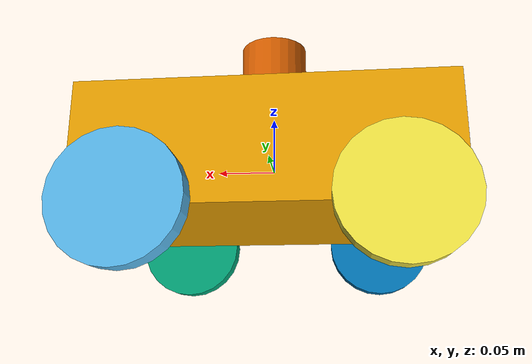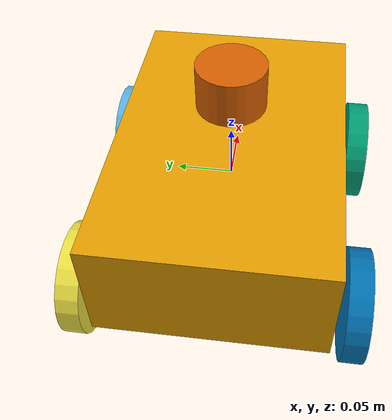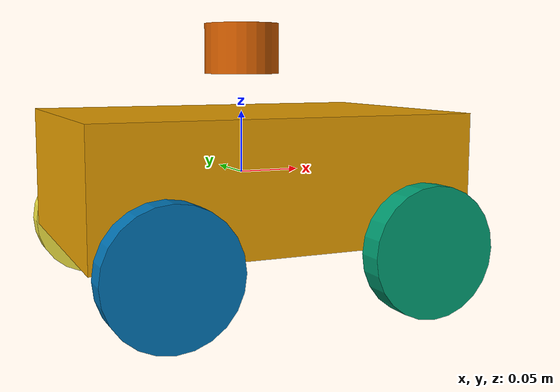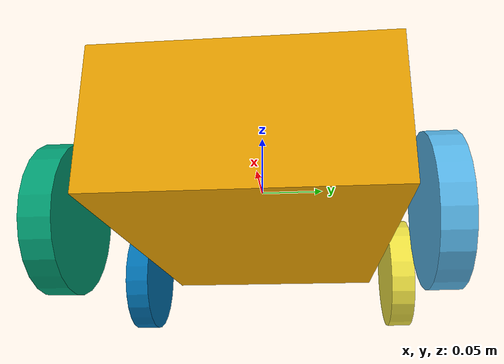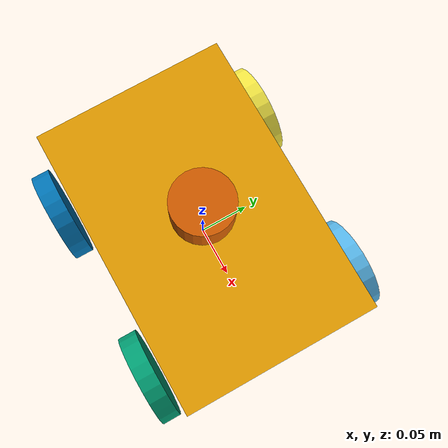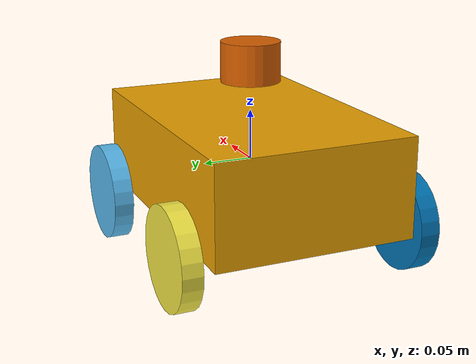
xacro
<?xml version="1.0"?>
<robot name="four_wheel_robot" xmlns:xacro="http://www.ros.org/wiki/xacro">

  <xacro:property name="wheel_radius" value="0.05" />
  <xacro:property name="wheel_width" value="0.02" />
  <xacro:property name="base_x_size" value="0.3" />
  <xacro:property name="base_y_size" value="0.2" />
  <xacro:property name="base_z_size" value="0.1" />

  <link name="base_link">
    <visual>
      <geometry>
        <box size="${base_x_size} ${base_y_size} ${base_z_size}" />
      </geometry>
    </visual>
  </link>

  <xacro:macro name="wheel" params="prefix parent_link x_pos y_pos z_pos">
    <link name="${prefix}_wheel_link">
      <visual>
        <geometry>
          <cylinder radius="${wheel_radius}" length="${wheel_width}" />
        </geometry>
        <origin xyz="0 0 0" rpy="1.5707 0 0" /> </visual>
    </link>

    <joint name="${prefix}_wheel_joint" type="continuous">
      <parent link="${parent_link}" />
      <child link="${prefix}_wheel_link" />
      <origin xyz="${x_pos} ${y_pos} ${z_pos}" />
      <axis xyz="0 1 0" /> </joint>
  </xacro:macro>

  <xacro:wheel prefix="front_left" parent_link="base_link" x_pos="0.1" y_pos="0.12" z_pos="-0.05" />
  <xacro:wheel prefix="front_right" parent_link="base_link" x_pos="0.1" y_pos="-0.12" z_pos="-0.05" />
  <xacro:wheel prefix="rear_left" parent_link="base_link" x_pos="-0.1" y_pos="0.12" z_pos="-0.05" />
  <xacro:wheel prefix="rear_right" parent_link="base_link" x_pos="-0.1" y_pos="-0.12" z_pos="-0.05" />

  <link name="lidar_link">
    <visual>
      <geometry>
        <cylinder radius="0.03" length="0.04" />
      </geometry>
    </visual>
  </link>

  <joint name="lidar_joint" type="fixed">
    <parent link="base_link" />
    <child link="lidar_link" />
    <origin xyz="0 0 0.1" rpy="0 0 0" />
  </joint>

</robot>
